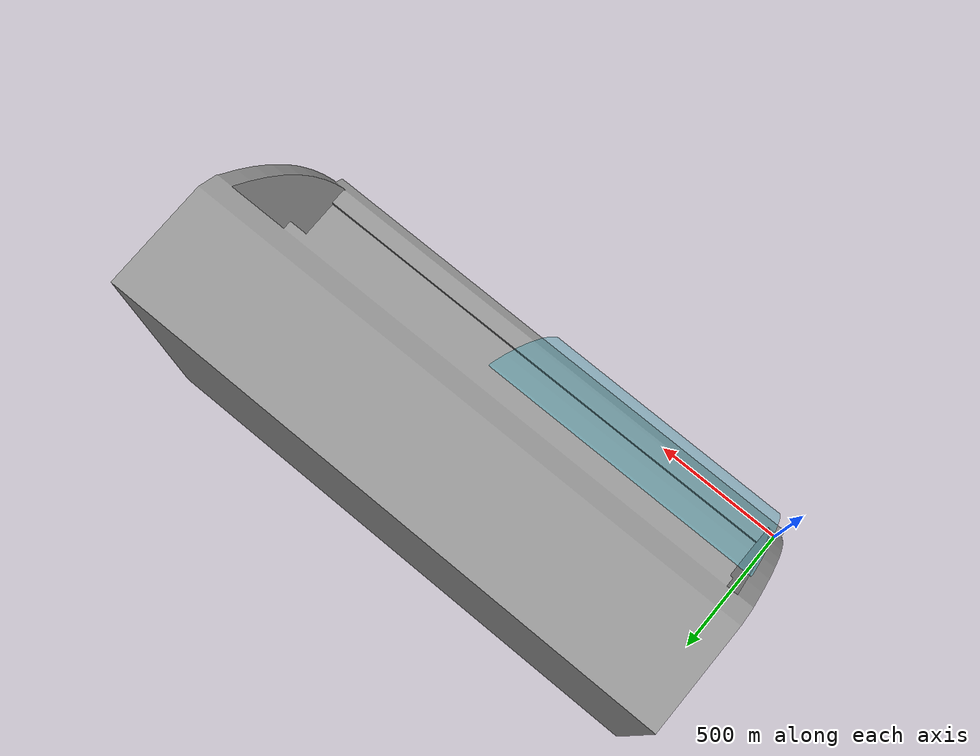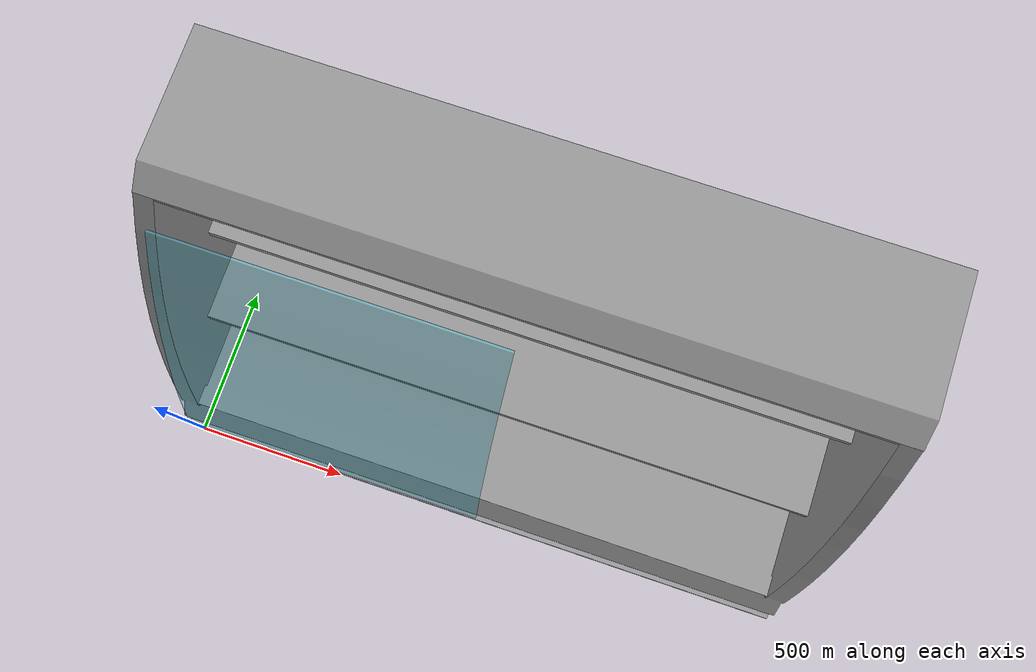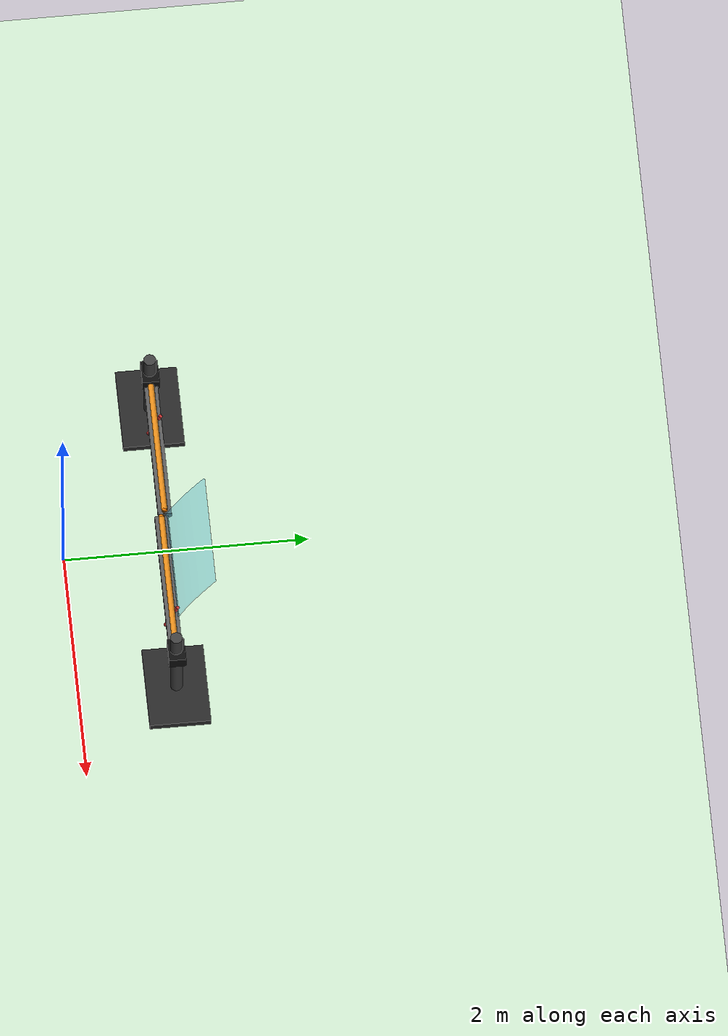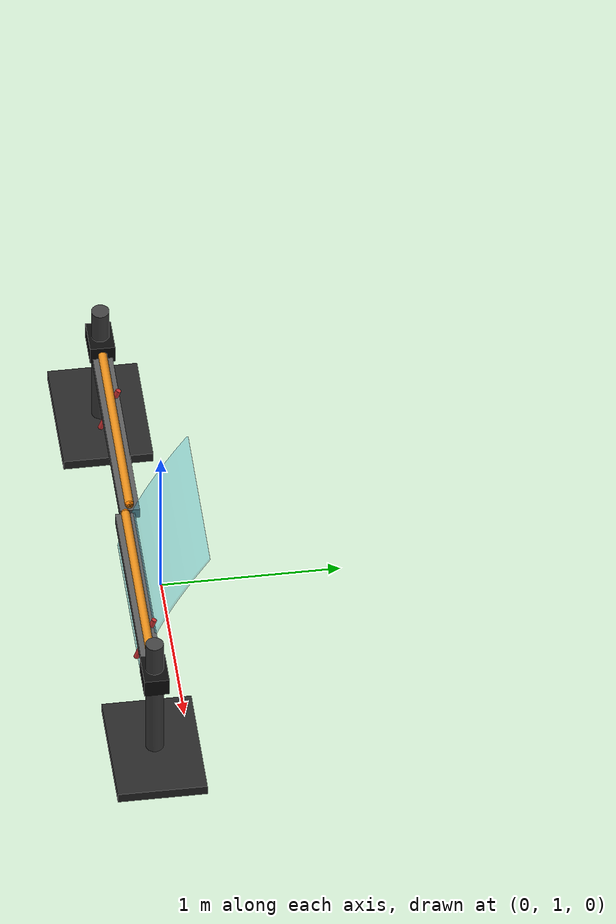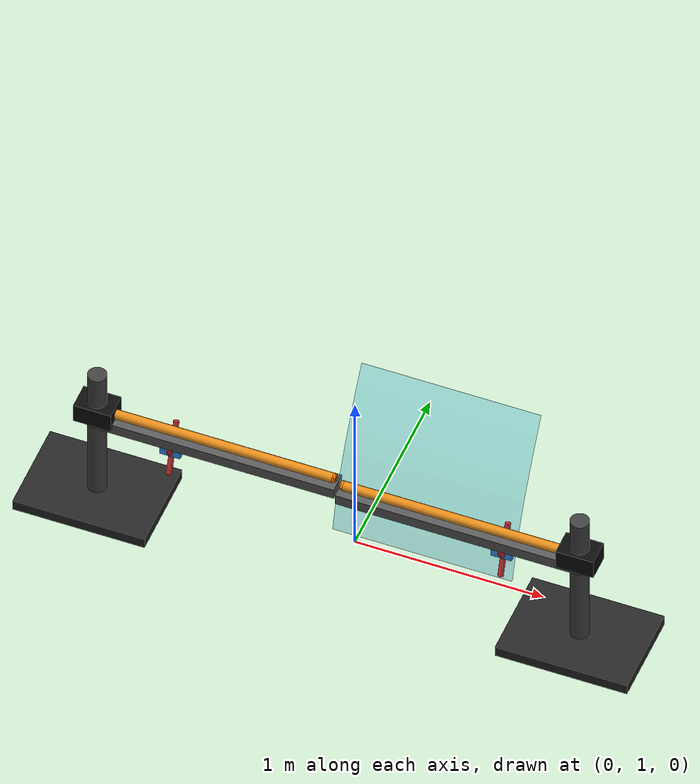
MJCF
<mujoco model="Test_osaka_sliding_vertical_doors_linear_actuation_system">

  <option timestep="0.002" gravity="0 0 -9.81"/>
  <compiler angle="radian"/>

  <asset>
    <!-- Banco frigo Osaka -->
    <mesh name="frigo_mesh" file="osaka_corpo.obj"/>
    <mesh name="porta_sx_mesh" file="osaka_portasx.obj"/>
    <mesh name="porta_dx_mesh" file="osaka_portadx.obj"/>
  </asset>

  <worldbody>
    <geom name="pavimento" type="plane" size="5 5 0.1" rgba="0.8 0.9 0.8 1"/>
    <light directional="true" diffuse="0.8 0.8 0.8" specular="0.2 0.2 0.2" pos="0 0 5" dir="0 0 -1" castshadow="false"/>

    <!-- Sistema meccanico lineare porta sinistra -->
    <body name="sistema_lineare_sx" pos="-1.30 0.83 0">

      <geom name="base_meccanica_sx" type="box" pos="0 0 0.03" size="0.35 0.25 0.03" rgba="0.15 0.15 0.15 1" contype="0" conaffinity="0"/>
      <geom name="colonna_fissa_sx" type="cylinder" pos="0 0 0.45" size="0.05 0.42" rgba="0.25 0.25 0.25 1" contype="0" conaffinity="0"/>

      <body name="colonna_regolabile_sx" pos="0 0 0.62">
        <inertial pos="0 0 -0.18" mass="4.0" diaginertia="0.08 0.08 0.02"/>
        <geom name="colonna_mobile_sx" type="cylinder" pos="0 0 -0.18" size="0.04 0.20" rgba="0.45 0.45 0.45 1" contype="0" conaffinity="0"/>

        <body name="testa_lineare_sx" pos="0 0 0">
          <inertial pos="0.70 0 0" mass="3.0" diaginertia="0.04 0.04 0.03"/>
          <geom name="corpo_motore_lineare_sx" type="box" pos="0 0 0" size="0.10 0.07 0.055" rgba="0.05 0.05 0.05 1" contype="0" conaffinity="0"/>
          <site name="inizio_guida_lineare_sx" pos="0 0 0" size="0.035" rgba="0 0 1 1"/>

          <body name="guida_lineare_sx_body" pos="0 0 0">
            <inertial pos="0.70 0 0" mass="2.5" diaginertia="0.08 0.08 0.006"/>

            <geom name="guida_lineare_sx"
                  type="capsule"
                  fromto="0 0 0 1.25 0 0"
                  size="0.025"
                  rgba="0.9 0.55 0.1 1"
                  contype="0"
                  conaffinity="0"/>

            <geom name="corpo_attuatore_lineare_sx"
                  type="box"
                  pos="0.625 0 -0.055"
                  size="0.65 0.055 0.03"
                  rgba="0.35 0.35 0.35 1"
                  contype="0"
                  conaffinity="0"/>

            <site name="fine_guida_lineare_sx" pos="1.25 0 0" size="0.025" rgba="1 0.5 0 1"/>

            <body name="carrello_lineare_sx" pos="0.40 0 -0.12">
              <joint name="attuatore_lineare_sx" type="slide" axis="1 0 0" range="0 0.8" limited="true" damping="20" frictionloss="2"/>

              <inertial pos="0 0 0" mass="0.8" diaginertia="0.004 0.004 0.002"/>
              <geom name="carrello_visual_sx" type="box" pos="0 0 0" size="0.055 0.04 0.025" rgba="0.2 0.6 1 1" contype="0" conaffinity="0"/>

              <body name="giunto_allineamento_lineare_sx" pos="0 0 0">
                <joint name="snodo_allineamento_lineare_sx" type="ball" damping="0.1"/>

                <inertial pos="0 0 0" mass="0.4" diaginertia="0.002 0.002 0.002"/>
                <geom name="snodo_allineamento_visual_sx" type="sphere" pos="0 0 0" size="0.035" rgba="0.1 0.6 1 1" contype="0" conaffinity="0"/>

                <body name="end_effector_lineare_sx" pos="0 0 0">
                  <inertial pos="0 0 0" mass="0.3" diaginertia="0.001 0.001 0.001"/>
                  <geom name="end_effector_visual_sx" type="sphere" pos="0 0 0" size="0.045" rgba="0.8 0.1 0.1 1" contype="0" conaffinity="0"/>
                  <site name="punto_presa_lineare_sx" pos="0 0 0" size="0.03" rgba="1 0 0 1"/>
                </body>
              </body>
            </body>
          </body>
        </body>
      </body>
    </body>

    <!-- Sistema meccanico lineare porta destra -->
    <body name="sistema_lineare_dx" pos="1.27 0.80 0">

      <geom name="base_meccanica_dx" type="box" pos="0 0 0.03" size="0.35 0.25 0.03" rgba="0.15 0.15 0.15 1" contype="0" conaffinity="0"/>
      <geom name="colonna_fissa_dx" type="cylinder" pos="0 0 0.45" size="0.05 0.42" rgba="0.25 0.25 0.25 1" contype="0" conaffinity="0"/>

      <body name="colonna_regolabile_dx" pos="0 0 0.62">
        <inertial pos="0 0 -0.18" mass="4.0" diaginertia="0.08 0.08 0.02"/>
        <geom name="colonna_mobile_dx" type="cylinder" pos="0 0 -0.18" size="0.04 0.20" rgba="0.45 0.45 0.45 1" contype="0" conaffinity="0"/>

        <body name="testa_lineare_dx" pos="0 0 0">
          <inertial pos="-0.70 0 0" mass="3.0" diaginertia="0.04 0.04 0.03"/>
          <geom name="corpo_motore_lineare_dx" type="box" pos="0 0 0" size="0.10 0.07 0.055" rgba="0.05 0.05 0.05 1" contype="0" conaffinity="0"/>
          <site name="inizio_guida_lineare_dx" pos="0 0 0" size="0.035" rgba="0 0 1 1"/>

          <body name="guida_lineare_dx_body" pos="0 0 0">
            <inertial pos="-0.70 0 0" mass="2.5" diaginertia="0.08 0.08 0.006"/>

            <geom name="guida_lineare_dx"
                  type="capsule"
                  fromto="0 0 0 -1.25 0 0"
                  size="0.025"
                  rgba="0.9 0.55 0.1 1"
                  contype="0"
                  conaffinity="0"/>

            <geom name="corpo_attuatore_lineare_dx"
                  type="box"
                  pos="-0.625 0 -0.055"
                  size="0.65 0.055 0.03"
                  rgba="0.35 0.35 0.35 1"
                  contype="0"
                  conaffinity="0"/>

            <site name="fine_guida_lineare_dx" pos="-1.25 0 0" size="0.025" rgba="1 0.5 0 1"/>

            <body name="carrello_lineare_dx" pos="-0.40 0 -0.12">
              <joint name="attuatore_lineare_dx" type="slide" axis="-1 0 0" range="0 0.8" limited="true" damping="20" frictionloss="2"/>

              <inertial pos="0 0 0" mass="0.8" diaginertia="0.004 0.004 0.002"/>
              <geom name="carrello_visual_dx" type="box" pos="0 0 0" size="0.055 0.04 0.025" rgba="0.2 0.6 1 1" contype="0" conaffinity="0"/>

              <body name="giunto_allineamento_lineare_dx" pos="0 0 0">
                <joint name="snodo_allineamento_lineare_dx" type="ball" damping="0.1"/>

                <inertial pos="0 0 0" mass="0.4" diaginertia="0.002 0.002 0.002"/>
                <geom name="snodo_allineamento_visual_dx" type="sphere" pos="0 0 0" size="0.035" rgba="0.1 0.6 1 1" contype="0" conaffinity="0"/>

                <body name="end_effector_lineare_dx" pos="0 0 0">
                  <inertial pos="0 0 0" mass="0.3" diaginertia="0.001 0.001 0.001"/>
                  <geom name="end_effector_visual_dx" type="sphere" pos="0 0 0" size="0.045" rgba="0.8 0.1 0.1 1" contype="0" conaffinity="0"/>
                  <site name="punto_presa_lineare_dx" pos="0 0 0" size="0.03" rgba="1 0 0 1"/>
                </body>
              </body>
            </body>
          </body>
        </body>
      </body>
    </body>

    <!-- Banco frigo Osaka -->
    <body name="banco_frigo" pos="-1 0.7 0">
      <geom type="mesh" mesh="frigo_mesh" rgba="0.6 0.6 0.6 1" contype="0" conaffinity="0"/>

      <body name="porta_sx" pos="0 0 0">
        <joint name="slide_sx" type="slide" axis="1 0 0" range="0 0.8" limited="true" damping="3" frictionloss="33"/>
        <inertial pos="0.48 0.3 0.7" mass="20" diaginertia="1.38033 2.88433 1.50433"/>
        <geom type="mesh" mesh="porta_sx_mesh" rgba="0.3 0.8 0.9 0.4" contype="0" conaffinity="0"/>

        <body name="maniglia_sx" pos="0.1 0.13 0.5" euler="2.8 0 0">
          <inertial pos="0 0 0" mass="0.2" diaginertia="0.001 0.001 0.001"/>
          <geom name="manigliasx" type="cylinder" size="0.015 0.15" rgba="0.8 0.2 0.2 1" contype="0" conaffinity="0"/>
          <site name="target_manigliasx" pos="0 0 0" size="0.02" rgba="1 0 0 0.5"/>
        </body>
      </body>

      <body name="porta_dx" pos="0 0 0">
        <joint name="slide_dx" type="slide" axis="-1 0 0" range="0 0.8" limited="true" damping="3" frictionloss="33"/>
        <inertial pos="1.48 0.3 0.7" mass="20" diaginertia="1.38033 2.88433 1.50433"/>
        <geom type="mesh" mesh="porta_dx_mesh" rgba="0.3 0.8 0.9 0.4" contype="0" conaffinity="0"/>

        <body name="maniglia_dx" pos="1.87 0.1 0.5" euler="2.8 0 0">
          <inertial pos="0 0 0" mass="0.2" diaginertia="0.001 0.001 0.001"/>
          <geom name="manigliadx" type="cylinder" size="0.015 0.15" rgba="0.8 0.2 0.2 1" contype="0" conaffinity="0"/>
          <site name="target_manigliadx" pos="0 0 0" size="0.02" rgba="1 0 0 0.5"/>
        </body>
      </body>
    </body>
  </worldbody>

  <equality>
    <connect name="presa_lineare_maniglia_sx"
             site1="punto_presa_lineare_sx"
             site2="target_manigliasx"
             solimp="0.85 0.95 0.002"
             solref="0.03 1"/>

    <connect name="presa_lineare_maniglia_dx"
             site1="punto_presa_lineare_dx"
             site2="target_manigliadx"
             solimp="0.85 0.95 0.002"
             solref="0.03 1"/>
  </equality>

  <actuator>
    <motor name="motore_lineare_sx"
           joint="attuatore_lineare_sx"
           gear="1"
           ctrllimited="true"
           ctrlrange="-800 800"/>

    <motor name="motore_lineare_dx"
           joint="attuatore_lineare_dx"
           gear="1"
           ctrllimited="true"
           ctrlrange="-800 800"/>
  </actuator>

</mujoco>
